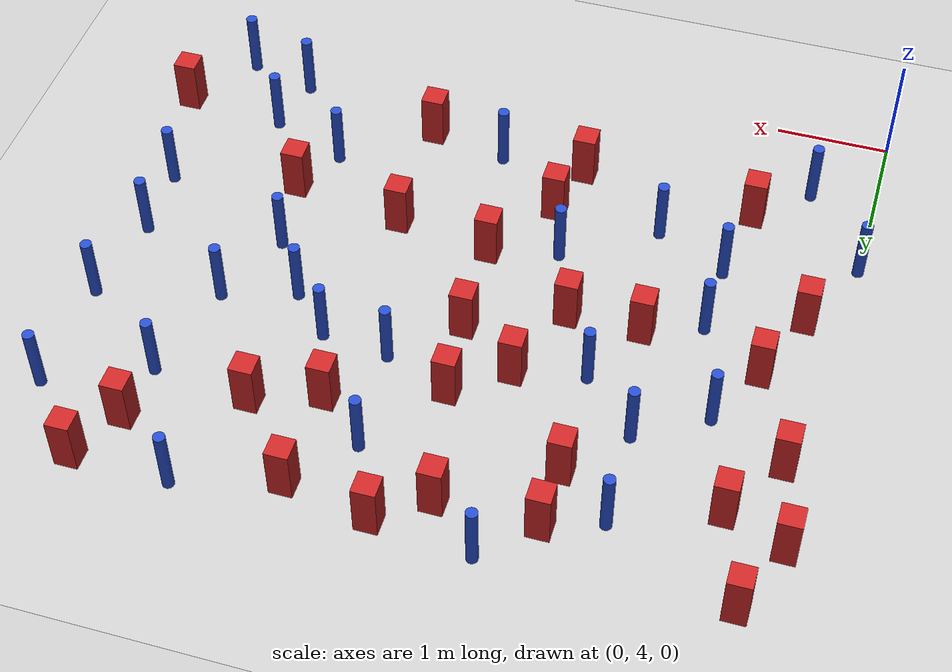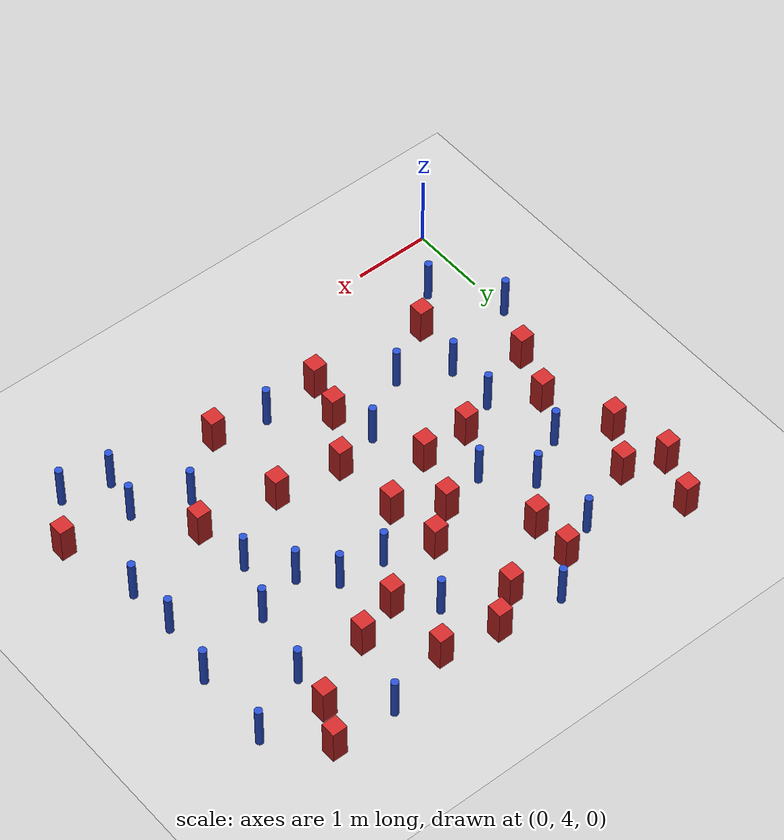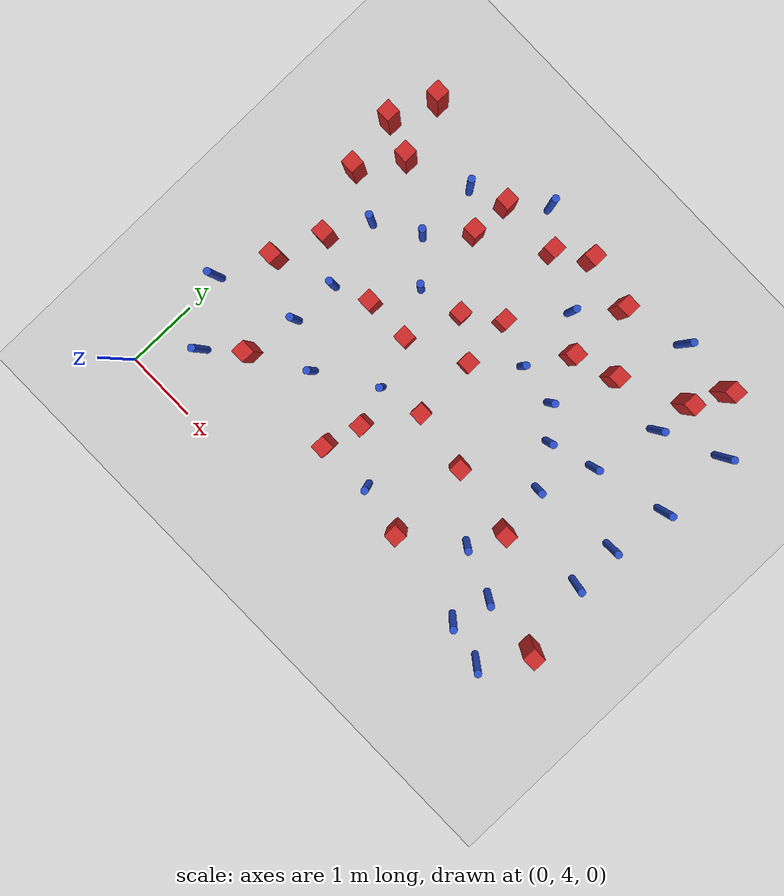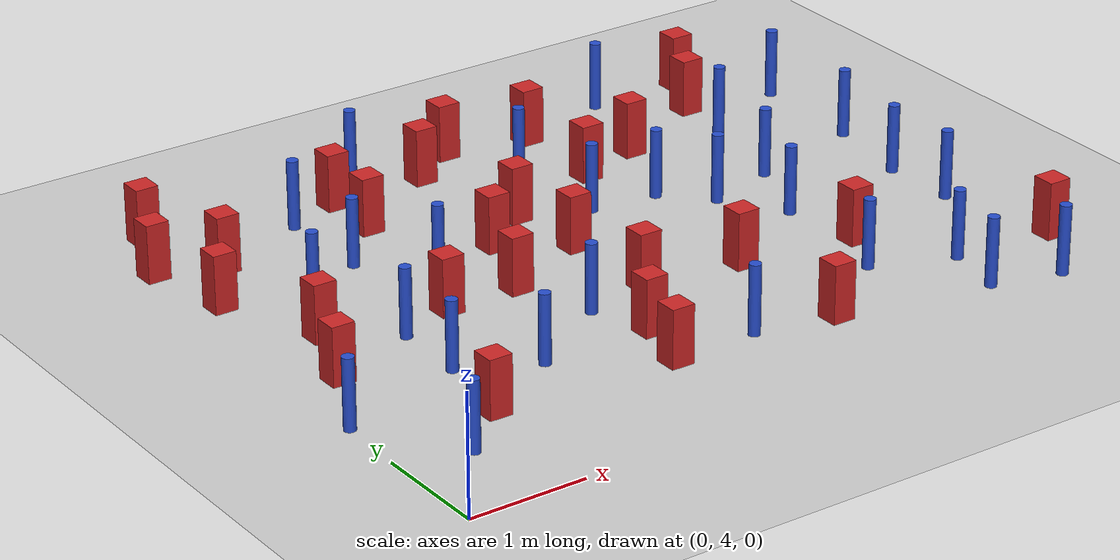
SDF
<sdf version="1.6">
 <world name="default">
  <model name="ground_plane">
   <static>1</static>
   <link name="link">
    <collision name="collision">
     <geometry><plane><normal>0 0 1</normal><size>100 100</size></plane></geometry>
     <surface><friction><ode><mu>100</mu><mu2>50</mu2></ode></friction></surface>
    </collision>
    <visual name="visual">
     <cast_shadows>0</cast_shadows>
     <geometry><plane><normal>0 0 1</normal><size>100 100</size></plane></geometry>
     <material>
      <ambient>1.0 1.0 1.0 1.0</ambient>
      <diffuse>0.8 0.8 0.8 1.0</diffuse>
      <specular>0.01 0.01 0.01 1.000000</specular>
     </material>
    </visual>
   </link>
  </model>
  <model name="pole_obstacle0">
   <static>true</static>
   <pose>0.904406216591 7.52222214441 2.88873142074e-08 -9.90536689661e-09 4.60219948993e-07 -1.20965994957e-07</pose>
   <link name="link">
    <pose>0 0 0.3 0 -0 0</pose>
    <inertial>
     <mass>1</mass>
     <inertia><ixx>0.145833</ixx><ixy>0</ixy><ixz>0</ixz><iyy>0.145833</iyy><iyz>0</iyz><izz>0.125</izz></inertia>
    </inertial>
    <collision name="collision">
     <geometry><cylinder><radius>0.05</radius><length>.6</length></cylinder></geometry>
    </collision>
    <visual name="visual">
     <geometry><cylinder><radius>0.05</radius><length>.6</length></cylinder></geometry>
     <material>
      <script><name>Gazebo/Blue</name><uri>file://media/materials/scripts/gazebo.material</uri></script>
     </material>
    </visual>
   </link>
  </model>
  <model name="square_post_obstacle4">
   <static>true</static>
   <pose>1.94861137037 8.92378379264 8.22691968438e-08 7.22125133819e-06 -7.54495500217e-07 2.29674213826e-05</pose>
   <link name="link">
    <pose>0 0 0.25 0 -0 0</pose>
    <inertial>
     <mass>100</mass>
     <inertia>
      <ixx>0.166667</ixx>
      <ixy>0</ixy>
      <ixz>0</ixz>
      <iyy>0.166667</iyy>
      <iyz>0</iyz>
      <izz>0.166667</izz>
     </inertia>
    </inertial>
    <collision name="collision"><geometry><box><size>.2 .2 .5</size></box></geometry></collision>
    <visual name="visual">
     <geometry><box><size>.2 .2 .5</size></box></geometry>
     <material>
      <script><name>Gazebo/Red</name><uri>file://media/materials/scripts/gazebo.material</uri></script>
     </material>
    </visual>
   </link>
  </model>
  <model name="pole_obstacle7">
   <static>true</static>
   <pose>0.56847447943 4.78392011947 2.88873142074e-08 -9.90536689661e-09 4.60219948993e-07 -1.20965994957e-07</pose>
   <link name="link">
    <pose>0 0 0.3 0 -0 0</pose>
    <inertial>
     <mass>1</mass>
     <inertia><ixx>0.145833</ixx><ixy>0</ixy><ixz>0</ixz><iyy>0.145833</iyy><iyz>0</iyz><izz>0.125</izz></inertia>
    </inertial>
    <collision name="collision">
     <geometry><cylinder><radius>0.05</radius><length>.6</length></cylinder></geometry>
    </collision>
    <visual name="visual">
     <geometry><cylinder><radius>0.05</radius><length>.6</length></cylinder></geometry>
     <material>
      <script><name>Gazebo/Blue</name><uri>file://media/materials/scripts/gazebo.material</uri></script>
     </material>
    </visual>
   </link>
  </model>
  <model name="pole_obstacle8">
   <static>true</static>
   <pose>3.61240412887 7.62931905213 2.88873142074e-08 -9.90536689859e-09 4.60219948989e-07 -1.20965994961e-07</pose>
   <link name="link">
    <pose>0 0 0.3 0 -0 0</pose>
    <inertial>
     <mass>1</mass>
     <inertia><ixx>0.145833</ixx><ixy>0</ixy><ixz>0</ixz><iyy>0.145833</iyy><iyz>0</iyz><izz>0.125</izz></inertia>
    </inertial>
    <collision name="collision">
     <geometry><cylinder><radius>0.05</radius><length>.6</length></cylinder></geometry>
    </collision>
    <visual name="visual">
     <geometry><cylinder><radius>0.05</radius><length>.6</length></cylinder></geometry>
     <material>
      <script><name>Gazebo/Blue</name><uri>file://media/materials/scripts/gazebo.material</uri></script>
     </material>
    </visual>
   </link>
  </model>
  <model name="pole_obstacle19">
   <static>true</static>
   <pose>3.33911026793 5.10541080875 2.88873142074e-08 -9.90536689859e-09 4.60219948989e-07 -1.20965994961e-07</pose>
   <link name="link">
    <pose>0 0 0.3 0 -0 0</pose>
    <inertial>
     <mass>1</mass>
     <inertia><ixx>0.145833</ixx><ixy>0</ixy><ixz>0</ixz><iyy>0.145833</iyy><iyz>0</iyz><izz>0.125</izz></inertia>
    </inertial>
    <collision name="collision">
     <geometry><cylinder><radius>0.05</radius><length>.6</length></cylinder></geometry>
    </collision>
    <visual name="visual">
     <geometry><cylinder><radius>0.05</radius><length>.6</length></cylinder></geometry>
     <material>
      <script><name>Gazebo/Blue</name><uri>file://media/materials/scripts/gazebo.material</uri></script>
     </material>
    </visual>
   </link>
  </model>
  <model name="square_post_obstacle15">
   <static>true</static>
   <pose>1.93085807369 8.37137564064 8.22691968438e-08 7.22125133819e-06 -7.54495500217e-07 2.29674213826e-05</pose>
   <link name="link">
    <pose>0 0 0.25 0 -0 0</pose>
    <inertial>
     <mass>100</mass>
     <inertia>
      <ixx>0.166667</ixx>
      <ixy>0</ixy>
      <ixz>0</ixz>
      <iyy>0.166667</iyy>
      <iyz>0</iyz>
      <izz>0.166667</izz>
     </inertia>
    </inertial>
    <collision name="collision"><geometry><box><size>.2 .2 .5</size></box></geometry></collision>
    <visual name="visual">
     <geometry><box><size>.2 .2 .5</size></box></geometry>
     <material>
      <script><name>Gazebo/Red</name><uri>file://media/materials/scripts/gazebo.material</uri></script>
     </material>
    </visual>
   </link>
  </model>
  <model name="square_post_obstacle17">
   <static>true</static>
   <pose>5.0040993418 5.96778753802 8.22691968438e-08 7.2212513382e-06 -7.54495500217e-07 2.29674213826e-05</pose>
   <link name="link">
    <pose>0 0 0.25 0 -0 0</pose>
    <inertial>
     <mass>100</mass>
     <inertia>
      <ixx>0.166667</ixx>
      <ixy>0</ixy>
      <ixz>0</ixz>
      <iyy>0.166667</iyy>
      <iyz>0</iyz>
      <izz>0.166667</izz>
     </inertia>
    </inertial>
    <collision name="collision"><geometry><box><size>.2 .2 .5</size></box></geometry></collision>
    <visual name="visual">
     <geometry><box><size>.2 .2 .5</size></box></geometry>
     <material>
      <script><name>Gazebo/Red</name><uri>file://media/materials/scripts/gazebo.material</uri></script>
     </material>
    </visual>
   </link>
  </model>
  <model name="pole_obstacle20">
   <static>true</static>
   <pose>6.09929318374 6.82445535173 2.88873142074e-08 -9.90536690842e-09 4.60219948965e-07 -1.20965994976e-07</pose>
   <link name="link">
    <pose>0 0 0.3 0 -0 0</pose>
    <inertial>
     <mass>1</mass>
     <inertia><ixx>0.145833</ixx><ixy>0</ixy><ixz>0</ixz><iyy>0.145833</iyy><iyz>0</iyz><izz>0.125</izz></inertia>
    </inertial>
    <collision name="collision">
     <geometry><cylinder><radius>0.05</radius><length>.6</length></cylinder></geometry>
    </collision>
    <visual name="visual">
     <geometry><cylinder><radius>0.05</radius><length>.6</length></cylinder></geometry>
     <material>
      <script><name>Gazebo/Blue</name><uri>file://media/materials/scripts/gazebo.material</uri></script>
     </material>
    </visual>
   </link>
  </model>
  <model name="square_post_obstacle23">
   <static>true</static>
   <pose>2.29477129684 6.78694470195 8.22691968438e-08 7.2212513382e-06 -7.54495500217e-07 2.29674213826e-05</pose>
   <link name="link">
    <pose>0 0 0.25 0 -0 0</pose>
    <inertial>
     <mass>100</mass>
     <inertia>
      <ixx>0.166667</ixx>
      <ixy>0</ixy>
      <ixz>0</ixz>
      <iyy>0.166667</iyy>
      <iyz>0</iyz>
      <izz>0.166667</izz>
     </inertia>
    </inertial>
    <collision name="collision"><geometry><box><size>.2 .2 .5</size></box></geometry></collision>
    <visual name="visual">
     <geometry><box><size>.2 .2 .5</size></box></geometry>
     <material>
      <script><name>Gazebo/Red</name><uri>file://media/materials/scripts/gazebo.material</uri></script>
     </material>
    </visual>
   </link>
  </model>
  <model name="pole_obstacle31">
   <static>true</static>
   <pose>5.1870527463 7.37889805802 2.88873142074e-08 -9.90536690842e-09 4.60219948965e-07 -1.20965994976e-07</pose>
   <link name="link">
    <pose>0 0 0.3 0 -0 0</pose>
    <inertial>
     <mass>1</mass>
     <inertia><ixx>0.145833</ixx><ixy>0</ixy><ixz>0</ixz><iyy>0.145833</iyy><iyz>0</iyz><izz>0.125</izz></inertia>
    </inertial>
    <collision name="collision">
     <geometry><cylinder><radius>0.05</radius><length>.6</length></cylinder></geometry>
    </collision>
    <visual name="visual">
     <geometry><cylinder><radius>0.05</radius><length>.6</length></cylinder></geometry>
     <material>
      <script><name>Gazebo/Blue</name><uri>file://media/materials/scripts/gazebo.material</uri></script>
     </material>
    </visual>
   </link>
  </model>
  <model name="pole_obstacle33">
   <static>true</static>
   <pose>2.54271997862 6.12186792245 2.88873142074e-08 -9.90536689859e-09 4.60219948989e-07 -1.20965994961e-07</pose>
   <link name="link">
    <pose>0 0 0.3 0 -0 0</pose>
    <inertial>
     <mass>1</mass>
     <inertia><ixx>0.145833</ixx><ixy>0</ixy><ixz>0</ixz><iyy>0.145833</iyy><iyz>0</iyz><izz>0.125</izz></inertia>
    </inertial>
    <collision name="collision">
     <geometry><cylinder><radius>0.05</radius><length>.6</length></cylinder></geometry>
    </collision>
    <visual name="visual">
     <geometry><cylinder><radius>0.05</radius><length>.6</length></cylinder></geometry>
     <material>
      <script><name>Gazebo/Blue</name><uri>file://media/materials/scripts/gazebo.material</uri></script>
     </material>
    </visual>
   </link>
  </model>
  <model name="pole_obstacle41">
   <static>true</static>
   <pose>1.13805078283 5.93053666166 2.88873142074e-08 -9.90536689852e-09 4.60219948989e-07 -1.2096599496e-07</pose>
   <link name="link">
    <pose>0 0 0.3 0 -0 0</pose>
    <inertial>
     <mass>1</mass>
     <inertia><ixx>0.145833</ixx><ixy>0</ixy><ixz>0</ixz><iyy>0.145833</iyy><iyz>0</iyz><izz>0.125</izz></inertia>
    </inertial>
    <collision name="collision">
     <geometry><cylinder><radius>0.05</radius><length>.6</length></cylinder></geometry>
    </collision>
    <visual name="visual">
     <geometry><cylinder><radius>0.05</radius><length>.6</length></cylinder></geometry>
     <material>
      <script><name>Gazebo/Blue</name><uri>file://media/materials/scripts/gazebo.material</uri></script>
     </material>
    </visual>
   </link>
  </model>
  <model name="pole_obstacle42">
   <static>true</static>
   <pose>1.48895552096 7.87616901731 2.88873142074e-08 -9.90536689852e-09 4.60219948989e-07 -1.2096599496e-07</pose>
   <link name="link">
    <pose>0 0 0.3 0 -0 0</pose>
    <inertial>
     <mass>1</mass>
     <inertia><ixx>0.145833</ixx><ixy>0</ixy><ixz>0</ixz><iyy>0.145833</iyy><iyz>0</iyz><izz>0.125</izz></inertia>
    </inertial>
    <collision name="collision">
     <geometry><cylinder><radius>0.05</radius><length>.6</length></cylinder></geometry>
    </collision>
    <visual name="visual">
     <geometry><cylinder><radius>0.05</radius><length>.6</length></cylinder></geometry>
     <material>
      <script><name>Gazebo/Blue</name><uri>file://media/materials/scripts/gazebo.material</uri></script>
     </material>
    </visual>
   </link>
  </model>
  <model name="square_post_obstacle31">
   <static>true</static>
   <pose>2.56758062955 7.51635664303 8.22691968438e-08 7.2212513382e-06 -7.54495500217e-07 2.29674213826e-05</pose>
   <link name="link">
    <pose>0 0 0.25 0 -0 0</pose>
    <inertial>
     <mass>100</mass>
     <inertia>
      <ixx>0.166667</ixx>
      <ixy>0</ixy>
      <ixz>0</ixz>
      <iyy>0.166667</iyy>
      <iyz>0</iyz>
      <izz>0.166667</izz>
     </inertia>
    </inertial>
    <collision name="collision"><geometry><box><size>.2 .2 .5</size></box></geometry></collision>
    <visual name="visual">
     <geometry><box><size>.2 .2 .5</size></box></geometry>
     <material>
      <script><name>Gazebo/Red</name><uri>file://media/materials/scripts/gazebo.material</uri></script>
     </material>
    </visual>
   </link>
  </model>
  <model name="square_post_obstacle33">
   <static>true</static>
   <pose>4.02474609214 4.96560521632 8.22691968438e-08 7.2212513382e-06 -7.54495500217e-07 2.29674213826e-05</pose>
   <link name="link">
    <pose>0 0 0.25 0 -0 0</pose>
    <inertial>
     <mass>100</mass>
     <inertia>
      <ixx>0.166667</ixx>
      <ixy>0</ixy>
      <ixz>0</ixz>
      <iyy>0.166667</iyy>
      <iyz>0</iyz>
      <izz>0.166667</izz>
     </inertia>
    </inertial>
    <collision name="collision"><geometry><box><size>.2 .2 .5</size></box></geometry></collision>
    <visual name="visual">
     <geometry><box><size>.2 .2 .5</size></box></geometry>
     <material>
      <script><name>Gazebo/Red</name><uri>file://media/materials/scripts/gazebo.material</uri></script>
     </material>
    </visual>
   </link>
  </model>
  <model name="square_post_obstacle34">
   <static>true</static>
   <pose>0.362300033199 6.29833780387 8.22691968438e-08 7.22125133819e-06 -7.54495500217e-07 2.29674213826e-05</pose>
   <link name="link">
    <pose>0 0 0.25 0 -0 0</pose>
    <inertial>
     <mass>100</mass>
     <inertia>
      <ixx>0.166667</ixx>
      <ixy>0</ixy>
      <ixz>0</ixz>
      <iyy>0.166667</iyy>
      <iyz>0</iyz>
      <izz>0.166667</izz>
     </inertia>
    </inertial>
    <collision name="collision"><geometry><box><size>.2 .2 .5</size></box></geometry></collision>
    <visual name="visual">
     <geometry><box><size>.2 .2 .5</size></box></geometry>
     <material>
      <script><name>Gazebo/Red</name><uri>file://media/materials/scripts/gazebo.material</uri></script>
     </material>
    </visual>
   </link>
  </model>
  <model name="pole_obstacle48">
   <static>true</static>
   <pose>4.85207873373 9.32981869693 2.88873142074e-08 -9.9053668967e-09 4.60219948993e-07 -1.20965994957e-07</pose>
   <link name="link">
    <pose>0 0 0.3 0 -0 0</pose>
    <inertial>
     <mass>1</mass>
     <inertia><ixx>0.145833</ixx><ixy>0</ixy><ixz>0</ixz><iyy>0.145833</iyy><iyz>0</iyz><izz>0.125</izz></inertia>
    </inertial>
    <collision name="collision">
     <geometry><cylinder><radius>0.05</radius><length>.6</length></cylinder></geometry>
    </collision>
    <visual name="visual">
     <geometry><cylinder><radius>0.05</radius><length>.6</length></cylinder></geometry>
     <material>
      <script><name>Gazebo/Blue</name><uri>file://media/materials/scripts/gazebo.material</uri></script>
     </material>
    </visual>
   </link>
  </model>
  <model name="pole_obstacle53">
   <static>true</static>
   <pose>1.4722659739 8.74593665378 2.88873142074e-08 -9.90536690474e-09 4.60219948974e-07 -1.2096599497e-07</pose>
   <link name="link">
    <pose>0 0 0.3 0 -0 0</pose>
    <inertial>
     <mass>1</mass>
     <inertia><ixx>0.145833</ixx><ixy>0</ixy><ixz>0</ixz><iyy>0.145833</iyy><iyz>0</iyz><izz>0.125</izz></inertia>
    </inertial>
    <collision name="collision">
     <geometry><cylinder><radius>0.05</radius><length>.6</length></cylinder></geometry>
    </collision>
    <visual name="visual">
     <geometry><cylinder><radius>0.05</radius><length>.6</length></cylinder></geometry>
     <material>
      <script><name>Gazebo/Blue</name><uri>file://media/materials/scripts/gazebo.material</uri></script>
     </material>
    </visual>
   </link>
  </model>
  <model name="pole_obstacle68">
   <static>true</static>
   <pose>6.25549800125 8.67647509884 2.88873142074e-08 -9.9053668967e-09 4.60219948993e-07 -1.20965994957e-07</pose>
   <link name="link">
    <pose>0 0 0.3 0 -0 0</pose>
    <inertial>
     <mass>1</mass>
     <inertia><ixx>0.145833</ixx><ixy>0</ixy><ixz>0</ixz><iyy>0.145833</iyy><iyz>0</iyz><izz>0.125</izz></inertia>
    </inertial>
    <collision name="collision">
     <geometry><cylinder><radius>0.05</radius><length>.6</length></cylinder></geometry>
    </collision>
    <visual name="visual">
     <geometry><cylinder><radius>0.05</radius><length>.6</length></cylinder></geometry>
     <material>
      <script><name>Gazebo/Blue</name><uri>file://media/materials/scripts/gazebo.material</uri></script>
     </material>
    </visual>
   </link>
  </model>
  <model name="square_post_obstacle52">
   <static>true</static>
   <pose>5.44911262793 8.82781169681 8.22691968438e-08 7.22125133819e-06 -7.54495500217e-07 2.29674213826e-05</pose>
   <link name="link">
    <pose>0 0 0.25 0 -0 0</pose>
    <inertial>
     <mass>100</mass>
     <inertia>
      <ixx>0.166667</ixx>
      <ixy>0</ixy>
      <ixz>0</ixz>
      <iyy>0.166667</iyy>
      <iyz>0</iyz>
      <izz>0.166667</izz>
     </inertia>
    </inertial>
    <collision name="collision"><geometry><box><size>.2 .2 .5</size></box></geometry></collision>
    <visual name="visual">
     <geometry><box><size>.2 .2 .5</size></box></geometry>
     <material>
      <script><name>Gazebo/Red</name><uri>file://media/materials/scripts/gazebo.material</uri></script>
     </material>
    </visual>
   </link>
  </model>
  <model name="square_post_obstacle61">
   <static>true</static>
   <pose>3.95764756907 8.19635911312 8.22691968438e-08 7.22125133819e-06 -7.54495500217e-07 2.29674213826e-05</pose>
   <link name="link">
    <pose>0 0 0.25 0 -0 0</pose>
    <inertial>
     <mass>100</mass>
     <inertia>
      <ixx>0.166667</ixx>
      <ixy>0</ixy>
      <ixz>0</ixz>
      <iyy>0.166667</iyy>
      <iyz>0</iyz>
      <izz>0.166667</izz>
     </inertia>
    </inertial>
    <collision name="collision"><geometry><box><size>.2 .2 .5</size></box></geometry></collision>
    <visual name="visual">
     <geometry><box><size>.2 .2 .5</size></box></geometry>
     <material>
      <script><name>Gazebo/Red</name><uri>file://media/materials/scripts/gazebo.material</uri></script>
     </material>
    </visual>
   </link>
  </model>
  <model name="pole_obstacle71">
   <static>true</static>
   <pose>1.96798858728 7.38435199005 2.88873142074e-08 -9.9053668918e-09 4.60219949005e-07 -1.20965994951e-07</pose>
   <link name="link">
    <pose>0 0 0.3 0 -0 0</pose>
    <inertial>
     <mass>1</mass>
     <inertia><ixx>0.145833</ixx><ixy>0</ixy><ixz>0</ixz><iyy>0.145833</iyy><iyz>0</iyz><izz>0.125</izz></inertia>
    </inertial>
    <collision name="collision">
     <geometry><cylinder><radius>0.05</radius><length>.6</length></cylinder></geometry>
    </collision>
    <visual name="visual">
     <geometry><cylinder><radius>0.05</radius><length>.6</length></cylinder></geometry>
     <material>
      <script><name>Gazebo/Blue</name><uri>file://media/materials/scripts/gazebo.material</uri></script>
     </material>
    </visual>
   </link>
  </model>
  <model name="pole_obstacle74">
   <static>true</static>
   <pose>4.89922254681 6.66503695913 2.88873142074e-08 -9.90536690842e-09 4.60219948965e-07 -1.20965994976e-07</pose>
   <link name="link">
    <pose>0 0 0.3 0 -0 0</pose>
    <inertial>
     <mass>1</mass>
     <inertia><ixx>0.145833</ixx><ixy>0</ixy><ixz>0</ixz><iyy>0.145833</iyy><iyz>0</iyz><izz>0.125</izz></inertia>
    </inertial>
    <collision name="collision">
     <geometry><cylinder><radius>0.05</radius><length>.6</length></cylinder></geometry>
    </collision>
    <visual name="visual">
     <geometry><cylinder><radius>0.05</radius><length>.6</length></cylinder></geometry>
     <material>
      <script><name>Gazebo/Blue</name><uri>file://media/materials/scripts/gazebo.material</uri></script>
     </material>
    </visual>
   </link>
  </model>
  <model name="square_post_obstacle65">
   <static>true</static>
   <pose>4.53998731125 8.38963959821 8.22691968438e-08 7.22125133819e-06 -7.54495500217e-07 2.29674213826e-05</pose>
   <link name="link">
    <pose>0 0 0.25 0 -0 0</pose>
    <inertial>
     <mass>100</mass>
     <inertia>
      <ixx>0.166667</ixx>
      <ixy>0</ixy>
      <ixz>0</ixz>
      <iyy>0.166667</iyy>
      <iyz>0</iyz>
      <izz>0.166667</izz>
     </inertia>
    </inertial>
    <collision name="collision"><geometry><box><size>.2 .2 .5</size></box></geometry></collision>
    <visual name="visual">
     <geometry><box><size>.2 .2 .5</size></box></geometry>
     <material>
      <script><name>Gazebo/Red</name><uri>file://media/materials/scripts/gazebo.material</uri></script>
     </material>
    </visual>
   </link>
  </model>
  <model name="pole_obstacle77">
   <static>true</static>
   <pose>2.37233186332 9.32696253888 2.88873142074e-08 -9.90536692318e-09 4.6021994893e-07 -1.20965994988e-07</pose>
   <link name="link">
    <pose>0 0 0.3 0 -0 0</pose>
    <inertial>
     <mass>1</mass>
     <inertia><ixx>0.145833</ixx><ixy>0</ixy><ixz>0</ixz><iyy>0.145833</iyy><iyz>0</iyz><izz>0.125</izz></inertia>
    </inertial>
    <collision name="collision">
     <geometry><cylinder><radius>0.05</radius><length>.6</length></cylinder></geometry>
    </collision>
    <visual name="visual">
     <geometry><cylinder><radius>0.05</radius><length>.6</length></cylinder></geometry>
     <material>
      <script><name>Gazebo/Blue</name><uri>file://media/materials/scripts/gazebo.material</uri></script>
     </material>
    </visual>
   </link>
  </model>
  <model name="square_post_obstacle71">
   <static>true</static>
   <pose>2.57826907554 5.0809974733 8.22691968438e-08 7.2212513382e-06 -7.54495500217e-07 2.29674213826e-05</pose>
   <link name="link">
    <pose>0 0 0.25 0 -0 0</pose>
    <inertial>
     <mass>100</mass>
     <inertia>
      <ixx>0.166667</ixx>
      <ixy>0</ixy>
      <ixz>0</ixz>
      <iyy>0.166667</iyy>
      <iyz>0</iyz>
      <izz>0.166667</izz>
     </inertia>
    </inertial>
    <collision name="collision"><geometry><box><size>.2 .2 .5</size></box></geometry></collision>
    <visual name="visual">
     <geometry><box><size>.2 .2 .5</size></box></geometry>
     <material>
      <script><name>Gazebo/Red</name><uri>file://media/materials/scripts/gazebo.material</uri></script>
     </material>
    </visual>
   </link>
  </model>
  <model name="square_post_obstacle76">
   <static>true</static>
   <pose>5.69256386058 9.3081392949 8.22691968438e-08 7.22125133819e-06 -7.54495500217e-07 2.29674213826e-05</pose>
   <link name="link">
    <pose>0 0 0.25 0 -0 0</pose>
    <inertial>
     <mass>100</mass>
     <inertia>
      <ixx>0.166667</ixx>
      <ixy>0</ixy>
      <ixz>0</ixz>
      <iyy>0.166667</iyy>
      <iyz>0</iyz>
      <izz>0.166667</izz>
     </inertia>
    </inertial>
    <collision name="collision"><geometry><box><size>.2 .2 .5</size></box></geometry></collision>
    <visual name="visual">
     <geometry><box><size>.2 .2 .5</size></box></geometry>
     <material>
      <script><name>Gazebo/Red</name><uri>file://media/materials/scripts/gazebo.material</uri></script>
     </material>
    </visual>
   </link>
  </model>
  <model name="pole_obstacle91">
   <static>true</static>
   <pose>1.76328748225 5.62141215033 2.88873142074e-08 -9.90536689852e-09 4.60219948989e-07 -1.2096599496e-07</pose>
   <link name="link">
    <pose>0 0 0.3 0 -0 0</pose>
    <inertial>
     <mass>1</mass>
     <inertia><ixx>0.145833</ixx><ixy>0</ixy><ixz>0</ixz><iyy>0.145833</iyy><iyz>0</iyz><izz>0.125</izz></inertia>
    </inertial>
    <collision name="collision">
     <geometry><cylinder><radius>0.05</radius><length>.6</length></cylinder></geometry>
    </collision>
    <visual name="visual">
     <geometry><cylinder><radius>0.05</radius><length>.6</length></cylinder></geometry>
     <material>
      <script><name>Gazebo/Blue</name><uri>file://media/materials/scripts/gazebo.material</uri></script>
     </material>
    </visual>
   </link>
  </model>
  <model name="square_post_obstacle88">
   <static>true</static>
   <pose>3.09435462245 7.1456533444 8.22691968438e-08 7.2212513382e-06 -7.54495500217e-07 2.29674213826e-05</pose>
   <link name="link">
    <pose>0 0 0.25 0 -0 0</pose>
    <inertial>
     <mass>100</mass>
     <inertia>
      <ixx>0.166667</ixx>
      <ixy>0</ixy>
      <ixz>0</ixz>
      <iyy>0.166667</iyy>
      <iyz>0</iyz>
      <izz>0.166667</izz>
     </inertia>
    </inertial>
    <collision name="collision"><geometry><box><size>.2 .2 .5</size></box></geometry></collision>
    <visual name="visual">
     <geometry><box><size>.2 .2 .5</size></box></geometry>
     <material>
      <script><name>Gazebo/Red</name><uri>file://media/materials/scripts/gazebo.material</uri></script>
     </material>
    </visual>
   </link>
  </model>
  <model name="pole_obstacle99">
   <static>true</static>
   <pose>0.0203796534767 5.58465742997 2.88873142074e-08 -9.90536689629e-09 4.60219948994e-07 -1.20965994958e-07</pose>
   <link name="link">
    <pose>0 0 0.3 0 -0 0</pose>
    <inertial>
     <mass>1</mass>
     <inertia><ixx>0.145833</ixx><ixy>0</ixy><ixz>0</ixz><iyy>0.145833</iyy><iyz>0</iyz><izz>0.125</izz></inertia>
    </inertial>
    <collision name="collision">
     <geometry><cylinder><radius>0.05</radius><length>.6</length></cylinder></geometry>
    </collision>
    <visual name="visual">
     <geometry><cylinder><radius>0.05</radius><length>.6</length></cylinder></geometry>
     <material>
      <script><name>Gazebo/Blue</name><uri>file://media/materials/scripts/gazebo.material</uri></script>
     </material>
    </visual>
   </link>
  </model>
  <model name="pole_obstacle100">
   <static>true</static>
   <pose>3.5399578648 8.57054409892 2.88873142074e-08 -9.90536692318e-09 4.6021994893e-07 -1.20965994988e-07</pose>
   <link name="link">
    <pose>0 0 0.3 0 -0 0</pose>
    <inertial>
     <mass>1</mass>
     <inertia><ixx>0.145833</ixx><ixy>0</ixy><ixz>0</ixz><iyy>0.145833</iyy><iyz>0</iyz><izz>0.125</izz></inertia>
    </inertial>
    <collision name="collision">
     <geometry><cylinder><radius>0.05</radius><length>.6</length></cylinder></geometry>
    </collision>
    <visual name="visual">
     <geometry><cylinder><radius>0.05</radius><length>.6</length></cylinder></geometry>
     <material>
      <script><name>Gazebo/Blue</name><uri>file://media/materials/scripts/gazebo.material</uri></script>
     </material>
    </visual>
   </link>
  </model>
  <model name="square_post_obstacle92">
   <static>true</static>
   <pose>2.71837665283 5.60543658215 8.22691968438e-08 7.2212513382e-06 -7.54495500217e-07 2.29674213826e-05</pose>
   <link name="link">
    <pose>0 0 0.25 0 -0 0</pose>
    <inertial>
     <mass>100</mass>
     <inertia>
      <ixx>0.166667</ixx>
      <ixy>0</ixy>
      <ixz>0</ixz>
      <iyy>0.166667</iyy>
      <iyz>0</iyz>
      <izz>0.166667</izz>
     </inertia>
    </inertial>
    <collision name="collision"><geometry><box><size>.2 .2 .5</size></box></geometry></collision>
    <visual name="visual">
     <geometry><box><size>.2 .2 .5</size></box></geometry>
     <material>
      <script><name>Gazebo/Red</name><uri>file://media/materials/scripts/gazebo.material</uri></script>
     </material>
    </visual>
   </link>
  </model>
  <model name="square_post_obstacle99">
   <static>true</static>
   <pose>3.02315220795 7.85912173934 8.22691968438e-08 7.2212513382e-06 -7.54495500217e-07 2.29674213826e-05</pose>
   <link name="link">
    <pose>0 0 0.25 0 -0 0</pose>
    <inertial>
     <mass>100</mass>
     <inertia>
      <ixx>0.166667</ixx>
      <ixy>0</ixy>
      <ixz>0</ixz>
      <iyy>0.166667</iyy>
      <iyz>0</iyz>
      <izz>0.166667</izz>
     </inertia>
    </inertial>
    <collision name="collision"><geometry><box><size>.2 .2 .5</size></box></geometry></collision>
    <visual name="visual">
     <geometry><box><size>.2 .2 .5</size></box></geometry>
     <material>
      <script><name>Gazebo/Red</name><uri>file://media/materials/scripts/gazebo.material</uri></script>
     </material>
    </visual>
   </link>
  </model>
  <model name="pole_obstacle110">
   <static>true</static>
   <pose>6.12344175089 6.17140424818 2.88873142074e-08 -9.90536690842e-09 4.60219948965e-07 -1.20965994976e-07</pose>
   <link name="link">
    <pose>0 0 0.3 0 -0 0</pose>
    <inertial>
     <mass>1</mass>
     <inertia><ixx>0.145833</ixx><ixy>0</ixy><ixz>0</ixz><iyy>0.145833</iyy><iyz>0</iyz><izz>0.125</izz></inertia>
    </inertial>
    <collision name="collision">
     <geometry><cylinder><radius>0.05</radius><length>.6</length></cylinder></geometry>
    </collision>
    <visual name="visual">
     <geometry><cylinder><radius>0.05</radius><length>.6</length></cylinder></geometry>
     <material>
      <script><name>Gazebo/Blue</name><uri>file://media/materials/scripts/gazebo.material</uri></script>
     </material>
    </visual>
   </link>
  </model>
  <model name="square_post_obstacle106">
   <static>true</static>
   <pose>0.258027256552 7.84050336194 8.22691968438e-08 7.22125133819e-06 -7.54495500217e-07 2.29674213826e-05</pose>
   <link name="link">
    <pose>0 0 0.25 0 -0 0</pose>
    <inertial>
     <mass>100</mass>
     <inertia>
      <ixx>0.166667</ixx>
      <ixy>0</ixy>
      <ixz>0</ixz>
      <iyy>0.166667</iyy>
      <iyz>0</iyz>
      <izz>0.166667</izz>
     </inertia>
    </inertial>
    <collision name="collision"><geometry><box><size>.2 .2 .5</size></box></geometry></collision>
    <visual name="visual">
     <geometry><box><size>.2 .2 .5</size></box></geometry>
     <material>
      <script><name>Gazebo/Red</name><uri>file://media/materials/scripts/gazebo.material</uri></script>
     </material>
    </visual>
   </link>
  </model>
  <model name="square_post_obstacle111">
   <static>true</static>
   <pose>1.01772613747 5.19691922168 8.22691968438e-08 7.2212513382e-06 -7.54495500217e-07 2.29674213826e-05</pose>
   <link name="link">
    <pose>0 0 0.25 0 -0 0</pose>
    <inertial>
     <mass>100</mass>
     <inertia>
      <ixx>0.166667</ixx>
      <ixy>0</ixy>
      <ixz>0</ixz>
      <iyy>0.166667</iyy>
      <iyz>0</iyz>
      <izz>0.166667</izz>
     </inertia>
    </inertial>
    <collision name="collision"><geometry><box><size>.2 .2 .5</size></box></geometry></collision>
    <visual name="visual">
     <geometry><box><size>.2 .2 .5</size></box></geometry>
     <material>
      <script><name>Gazebo/Red</name><uri>file://media/materials/scripts/gazebo.material</uri></script>
     </material>
    </visual>
   </link>
  </model>
  <model name="square_post_obstacle117">
   <static>true</static>
   <pose>2.80193808298 8.92845355951 8.22691968438e-08 7.22125133819e-06 -7.54495500217e-07 2.29674213826e-05</pose>
   <link name="link">
    <pose>0 0 0.25 0 -0 0</pose>
    <inertial>
     <mass>100</mass>
     <inertia>
      <ixx>0.166667</ixx>
      <ixy>0</ixy>
      <ixz>0</ixz>
      <iyy>0.166667</iyy>
      <iyz>0</iyz>
      <izz>0.166667</izz>
     </inertia>
    </inertial>
    <collision name="collision"><geometry><box><size>.2 .2 .5</size></box></geometry></collision>
    <visual name="visual">
     <geometry><box><size>.2 .2 .5</size></box></geometry>
     <material>
      <script><name>Gazebo/Red</name><uri>file://media/materials/scripts/gazebo.material</uri></script>
     </material>
    </visual>
   </link>
  </model>
  <model name="pole_obstacle123">
   <static>true</static>
   <pose>5.40507833002 8.29907628299 2.88873142074e-08 -9.9053668967e-09 4.60219948993e-07 -1.20965994957e-07</pose>
   <link name="link">
    <pose>0 0 0.3 0 -0 0</pose>
    <inertial>
     <mass>1</mass>
     <inertia><ixx>0.145833</ixx><ixy>0</ixy><ixz>0</ixz><iyy>0.145833</iyy><iyz>0</iyz><izz>0.125</izz></inertia>
    </inertial>
    <collision name="collision">
     <geometry><cylinder><radius>0.05</radius><length>.6</length></cylinder></geometry>
    </collision>
    <visual name="visual">
     <geometry><cylinder><radius>0.05</radius><length>.6</length></cylinder></geometry>
     <material>
      <script><name>Gazebo/Blue</name><uri>file://media/materials/scripts/gazebo.material</uri></script>
     </material>
    </visual>
   </link>
  </model>
  <model name="pole_obstacle138">
   <static>true</static>
   <pose>6.23024992494 7.63860384671 2.88873142074e-08 -9.90536690842e-09 4.60219948965e-07 -1.20965994976e-07</pose>
   <link name="link">
    <pose>0 0 0.3 0 -0 0</pose>
    <inertial>
     <mass>1</mass>
     <inertia><ixx>0.145833</ixx><ixy>0</ixy><ixz>0</ixz><iyy>0.145833</iyy><iyz>0</iyz><izz>0.125</izz></inertia>
    </inertial>
    <collision name="collision">
     <geometry><cylinder><radius>0.05</radius><length>.6</length></cylinder></geometry>
    </collision>
    <visual name="visual">
     <geometry><cylinder><radius>0.05</radius><length>.6</length></cylinder></geometry>
     <material>
      <script><name>Gazebo/Blue</name><uri>file://media/materials/scripts/gazebo.material</uri></script>
     </material>
    </visual>
   </link>
  </model>
  <model name="square_post_obstacle134">
   <static>true</static>
   <pose>3.99335026333 6.13452906319 8.22691968438e-08 7.2212513382e-06 -7.54495500217e-07 2.29674213826e-05</pose>
   <link name="link">
    <pose>0 0 0.25 0 -0 0</pose>
    <inertial>
     <mass>100</mass>
     <inertia>
      <ixx>0.166667</ixx>
      <ixy>0</ixy>
      <ixz>0</ixz>
      <iyy>0.166667</iyy>
      <iyz>0</iyz>
      <izz>0.166667</izz>
     </inertia>
    </inertial>
    <collision name="collision"><geometry><box><size>.2 .2 .5</size></box></geometry></collision>
    <visual name="visual">
     <geometry><box><size>.2 .2 .5</size></box></geometry>
     <material>
      <script><name>Gazebo/Red</name><uri>file://media/materials/scripts/gazebo.material</uri></script>
     </material>
    </visual>
   </link>
  </model>
  <model name="square_post_obstacle137">
   <static>true</static>
   <pose>6.35628923919 5.15109432235 8.22691968438e-08 7.2212513382e-06 -7.54495500217e-07 2.29674213826e-05</pose>
   <link name="link">
    <pose>0 0 0.25 0 -0 0</pose>
    <inertial>
     <mass>100</mass>
     <inertia>
      <ixx>0.166667</ixx>
      <ixy>0</ixy>
      <ixz>0</ixz>
      <iyy>0.166667</iyy>
      <iyz>0</iyz>
      <izz>0.166667</izz>
     </inertia>
    </inertial>
    <collision name="collision"><geometry><box><size>.2 .2 .5</size></box></geometry></collision>
    <visual name="visual">
     <geometry><box><size>.2 .2 .5</size></box></geometry>
     <material>
      <script><name>Gazebo/Red</name><uri>file://media/materials/scripts/gazebo.material</uri></script>
     </material>
    </visual>
   </link>
  </model>
  <model name="pole_obstacle149">
   <static>true</static>
   <pose>5.95348957436 4.54256101679 2.88873142074e-08 -9.90536690842e-09 4.60219948965e-07 -1.20965994976e-07</pose>
   <link name="link">
    <pose>0 0 0.3 0 -0 0</pose>
    <inertial>
     <mass>1</mass>
     <inertia><ixx>0.145833</ixx><ixy>0</ixy><ixz>0</ixz><iyy>0.145833</iyy><iyz>0</iyz><izz>0.125</izz></inertia>
    </inertial>
    <collision name="collision">
     <geometry><cylinder><radius>0.05</radius><length>.6</length></cylinder></geometry>
    </collision>
    <visual name="visual">
     <geometry><cylinder><radius>0.05</radius><length>.6</length></cylinder></geometry>
     <material>
      <script><name>Gazebo/Blue</name><uri>file://media/materials/scripts/gazebo.material</uri></script>
     </material>
    </visual>
   </link>
  </model>
  <model name="square_post_obstacle162">
   <static>true</static>
   <pose>3.97351969814 9.08966644922 8.22691968438e-08 7.22125133819e-06 -7.54495500217e-07 2.29674213826e-05</pose>
   <link name="link">
    <pose>0 0 0.25 0 -0 0</pose>
    <inertial>
     <mass>100</mass>
     <inertia>
      <ixx>0.166667</ixx>
      <ixy>0</ixy>
      <ixz>0</ixz>
      <iyy>0.166667</iyy>
      <iyz>0</iyz>
      <izz>0.166667</izz>
     </inertia>
    </inertial>
    <collision name="collision"><geometry><box><size>.2 .2 .5</size></box></geometry></collision>
    <visual name="visual">
     <geometry><box><size>.2 .2 .5</size></box></geometry>
     <material>
      <script><name>Gazebo/Red</name><uri>file://media/materials/scripts/gazebo.material</uri></script>
     </material>
    </visual>
   </link>
  </model>
  <model name="pole_obstacle170">
   <static>true</static>
   <pose>1.15612642421 6.59374195957 2.88873142074e-08 -9.90536689852e-09 4.60219948989e-07 -1.2096599496e-07</pose>
   <link name="link">
    <pose>0 0 0.3 0 -0 0</pose>
    <inertial>
     <mass>1</mass>
     <inertia><ixx>0.145833</ixx><ixy>0</ixy><ixz>0</ixz><iyy>0.145833</iyy><iyz>0</iyz><izz>0.125</izz></inertia>
    </inertial>
    <collision name="collision">
     <geometry><cylinder><radius>0.05</radius><length>.6</length></cylinder></geometry>
    </collision>
    <visual name="visual">
     <geometry><cylinder><radius>0.05</radius><length>.6</length></cylinder></geometry>
     <material>
      <script><name>Gazebo/Blue</name><uri>file://media/materials/scripts/gazebo.material</uri></script>
     </material>
    </visual>
   </link>
  </model>
  <model name="pole_obstacle171">
   <static>true</static>
   <pose>4.77684404204 5.50951756439 2.88873142074e-08 -9.90536690842e-09 4.60219948965e-07 -1.20965994976e-07</pose>
   <link name="link">
    <pose>0 0 0.3 0 -0 0</pose>
    <inertial>
     <mass>1</mass>
     <inertia><ixx>0.145833</ixx><ixy>0</ixy><ixz>0</ixz><iyy>0.145833</iyy><iyz>0</iyz><izz>0.125</izz></inertia>
    </inertial>
    <collision name="collision">
     <geometry><cylinder><radius>0.05</radius><length>.6</length></cylinder></geometry>
    </collision>
    <visual name="visual">
     <geometry><cylinder><radius>0.05</radius><length>.6</length></cylinder></geometry>
     <material>
      <script><name>Gazebo/Blue</name><uri>file://media/materials/scripts/gazebo.material</uri></script>
     </material>
    </visual>
   </link>
  </model>
  <model name="pole_obstacle173">
   <static>true</static>
   <pose>5.46386256718 5.23595038168 2.88873142074e-08 -9.90536690842e-09 4.60219948965e-07 -1.20965994976e-07</pose>
   <link name="link">
    <pose>0 0 0.3 0 -0 0</pose>
    <inertial>
     <mass>1</mass>
     <inertia><ixx>0.145833</ixx><ixy>0</ixy><ixz>0</ixz><iyy>0.145833</iyy><iyz>0</iyz><izz>0.125</izz></inertia>
    </inertial>
    <collision name="collision">
     <geometry><cylinder><radius>0.05</radius><length>.6</length></cylinder></geometry>
    </collision>
    <visual name="visual">
     <geometry><cylinder><radius>0.05</radius><length>.6</length></cylinder></geometry>
     <material>
      <script><name>Gazebo/Blue</name><uri>file://media/materials/scripts/gazebo.material</uri></script>
     </material>
    </visual>
   </link>
  </model>
  <model name="square_post_obstacle174">
   <static>true</static>
   <pose>0.362785571609 9.23153149178 8.22691968438e-08 7.22125133819e-06 -7.54495500217e-07 2.29674213826e-05</pose>
   <link name="link">
    <pose>0 0 0.25 0 -0 0</pose>
    <inertial>
     <mass>100</mass>
     <inertia>
      <ixx>0.166667</ixx>
      <ixy>0</ixy>
      <ixz>0</ixz>
      <iyy>0.166667</iyy>
      <iyz>0</iyz>
      <izz>0.166667</izz>
     </inertia>
    </inertial>
    <collision name="collision"><geometry><box><size>.2 .2 .5</size></box></geometry></collision>
    <visual name="visual">
     <geometry><box><size>.2 .2 .5</size></box></geometry>
     <material>
      <script><name>Gazebo/Red</name><uri>file://media/materials/scripts/gazebo.material</uri></script>
     </material>
    </visual>
   </link>
  </model>
  <model name="pole_obstacle184">
   <static>true</static>
   <pose>4.20305104406 7.55660618957 2.88873142074e-08 -9.90536690842e-09 4.60219948965e-07 -1.20965994976e-07</pose>
   <link name="link">
    <pose>0 0 0.3 0 -0 0</pose>
    <inertial>
     <mass>1</mass>
     <inertia><ixx>0.145833</ixx><ixy>0</ixy><ixz>0</ixz><iyy>0.145833</iyy><iyz>0</iyz><izz>0.125</izz></inertia>
    </inertial>
    <collision name="collision">
     <geometry><cylinder><radius>0.05</radius><length>.6</length></cylinder></geometry>
    </collision>
    <visual name="visual">
     <geometry><cylinder><radius>0.05</radius><length>.6</length></cylinder></geometry>
     <material>
      <script><name>Gazebo/Blue</name><uri>file://media/materials/scripts/gazebo.material</uri></script>
     </material>
    </visual>
   </link>
  </model>
  <model name="square_post_obstacle191">
   <static>true</static>
   <pose>3.14032686084 6.26413539229 8.22691968438e-08 7.2212513382e-06 -7.54495500217e-07 2.29674213826e-05</pose>
   <link name="link">
    <pose>0 0 0.25 0 -0 0</pose>
    <inertial>
     <mass>100</mass>
     <inertia>
      <ixx>0.166667</ixx>
      <ixy>0</ixy>
      <ixz>0</ixz>
      <iyy>0.166667</iyy>
      <iyz>0</iyz>
      <izz>0.166667</izz>
     </inertia>
    </inertial>
    <collision name="collision"><geometry><box><size>.2 .2 .5</size></box></geometry></collision>
    <visual name="visual">
     <geometry><box><size>.2 .2 .5</size></box></geometry>
     <material>
      <script><name>Gazebo/Red</name><uri>file://media/materials/scripts/gazebo.material</uri></script>
     </material>
    </visual>
   </link>
  </model>
  <model name="square_post_obstacle198">
   <static>true</static>
   <pose>0.106530172369 8.61175936985 8.22691968438e-08 7.22125133819e-06 -7.54495500217e-07 2.29674213826e-05</pose>
   <link name="link">
    <pose>0 0 0.25 0 -0 0</pose>
    <inertial>
     <mass>100</mass>
     <inertia>
      <ixx>0.166667</ixx>
      <ixy>0</ixy>
      <ixz>0</ixz>
      <iyy>0.166667</iyy>
      <iyz>0</iyz>
      <izz>0.166667</izz>
     </inertia>
    </inertial>
    <collision name="collision"><geometry><box><size>.2 .2 .5</size></box></geometry></collision>
    <visual name="visual">
     <geometry><box><size>.2 .2 .5</size></box></geometry>
     <material>
      <script><name>Gazebo/Red</name><uri>file://media/materials/scripts/gazebo.material</uri></script>
     </material>
    </visual>
   </link>
  </model>
  <model name="square_post_obstacle206">
   <static>true</static>
   <pose>0.618722213314 6.96838902059 8.22691968438e-08 7.2212513382e-06 -7.54495500217e-07 2.29674213826e-05</pose>
   <link name="link">
    <pose>0 0 0.25 0 -0 0</pose>
    <inertial>
     <mass>100</mass>
     <inertia>
      <ixx>0.166667</ixx>
      <ixy>0</ixy>
      <ixz>0</ixz>
      <iyy>0.166667</iyy>
      <iyz>0</iyz>
      <izz>0.166667</izz>
     </inertia>
    </inertial>
    <collision name="collision"><geometry><box><size>.2 .2 .5</size></box></geometry></collision>
    <visual name="visual">
     <geometry><box><size>.2 .2 .5</size></box></geometry>
     <material>
      <script><name>Gazebo/Red</name><uri>file://media/materials/scripts/gazebo.material</uri></script>
     </material>
    </visual>
   </link>
  </model>
  <model name="pole_obstacle202">
   <static>true</static>
   <pose>4.55483636319 7.18895233021 2.88873142074e-08 -9.90536690842e-09 4.60219948965e-07 -1.20965994976e-07</pose>
   <link name="link">
    <pose>0 0 0.3 0 -0 0</pose>
    <inertial>
     <mass>1</mass>
     <inertia><ixx>0.145833</ixx><ixy>0</ixy><ixz>0</ixz><iyy>0.145833</iyy><iyz>0</iyz><izz>0.125</izz></inertia>
    </inertial>
    <collision name="collision">
     <geometry><cylinder><radius>0.05</radius><length>.6</length></cylinder></geometry>
    </collision>
    <visual name="visual">
     <geometry><cylinder><radius>0.05</radius><length>.6</length></cylinder></geometry>
     <material>
      <script><name>Gazebo/Blue</name><uri>file://media/materials/scripts/gazebo.material</uri></script>
     </material>
    </visual>
   </link>
  </model>
  <model name="pole_obstacle211">
   <static>true</static>
   <pose>5.35222708816 4.70099394518 2.88873142074e-08 -9.90536690842e-09 4.60219948965e-07 -1.20965994976e-07</pose>
   <link name="link">
    <pose>0 0 0.3 0 -0 0</pose>
    <inertial>
     <mass>1</mass>
     <inertia><ixx>0.145833</ixx><ixy>0</ixy><ixz>0</ixz><iyy>0.145833</iyy><iyz>0</iyz><izz>0.125</izz></inertia>
    </inertial>
    <collision name="collision">
     <geometry><cylinder><radius>0.05</radius><length>.6</length></cylinder></geometry>
    </collision>
    <visual name="visual">
     <geometry><cylinder><radius>0.05</radius><length>.6</length></cylinder></geometry>
     <material>
      <script><name>Gazebo/Blue</name><uri>file://media/materials/scripts/gazebo.material</uri></script>
     </material>
    </visual>
   </link>
  </model>
  <model name="square_post_obstacle214">
   <static>true</static>
   <pose>1.65371003262 6.78742996466 8.22691968438e-08 7.22125133819e-06 -7.54495500217e-07 2.29674213826e-05</pose>
   <link name="link">
    <pose>0 0 0.25 0 -0 0</pose>
    <inertial>
     <mass>100</mass>
     <inertia>
      <ixx>0.166667</ixx>
      <ixy>0</ixy>
      <ixz>0</ixz>
      <iyy>0.166667</iyy>
      <iyz>0</iyz>
      <izz>0.166667</izz>
     </inertia>
    </inertial>
    <collision name="collision"><geometry><box><size>.2 .2 .5</size></box></geometry></collision>
    <visual name="visual">
     <geometry><box><size>.2 .2 .5</size></box></geometry>
     <material>
      <script><name>Gazebo/Red</name><uri>file://media/materials/scripts/gazebo.material</uri></script>
     </material>
    </visual>
   </link>
  </model>
  <model name="square_post_obstacle216">
   <static>true</static>
   <pose>3.22580003262 9.23246996466 8.22691968438e-08 7.2212513382e-06 -7.54495500217e-07 2.29674213826e-05</pose>
   <link name="link">
    <pose>0 0 0.25 0 -0 0</pose>
    <inertial>
     <mass>100</mass>
     <inertia>
      <ixx>0.166667</ixx>
      <ixy>0</ixy>
      <ixz>0</ixz>
      <iyy>0.166667</iyy>
      <iyz>0</iyz>
      <izz>0.166667</izz>
     </inertia>
    </inertial>
    <collision name="collision"><geometry><box><size>.2 .2 .5</size></box></geometry></collision>
    <visual name="visual">
     <geometry><box><size>.2 .2 .5</size></box></geometry>
     <material>
      <script><name>Gazebo/Red</name><uri>file://media/materials/scripts/gazebo.material</uri></script>
     </material>
    </visual>
   </link>
  </model>
  <model name="square_post_obstacle232">
   <static>true</static>
   <pose>0.622815032622 8.41412996466 8.22691968438e-08 7.22125133819e-06 -7.54495500217e-07 2.29674213826e-05</pose>
   <link name="link">
    <pose>0 0 0.25 0 -0 0</pose>
    <inertial>
     <mass>100</mass>
     <inertia>
      <ixx>0.166667</ixx>
      <ixy>0</ixy>
      <ixz>0</ixz>
      <iyy>0.166667</iyy>
      <iyz>0</iyz>
      <izz>0.166667</izz>
     </inertia>
    </inertial>
    <collision name="collision"><geometry><box><size>.2 .2 .5</size></box></geometry></collision>
    <visual name="visual">
     <geometry><box><size>.2 .2 .5</size></box></geometry>
     <material>
      <script><name>Gazebo/Red</name><uri>file://media/materials/scripts/gazebo.material</uri></script>
     </material>
    </visual>
   </link>
  </model>
 </world>
</sdf>
